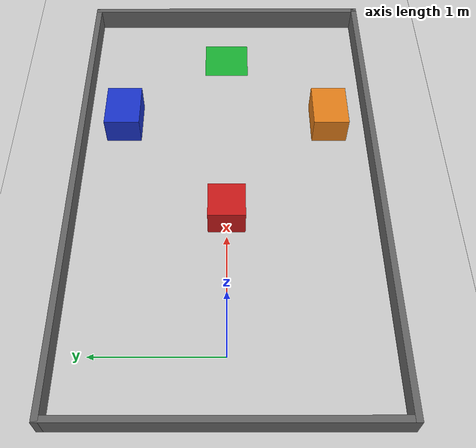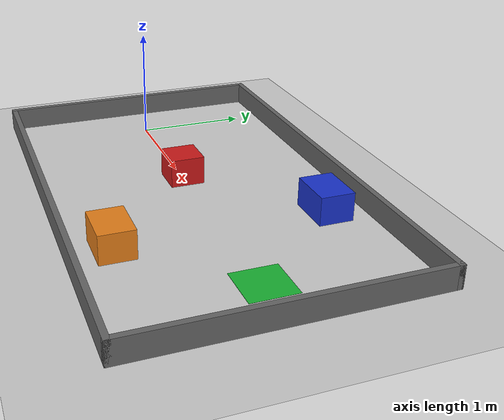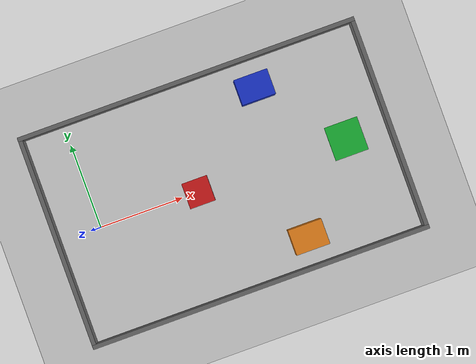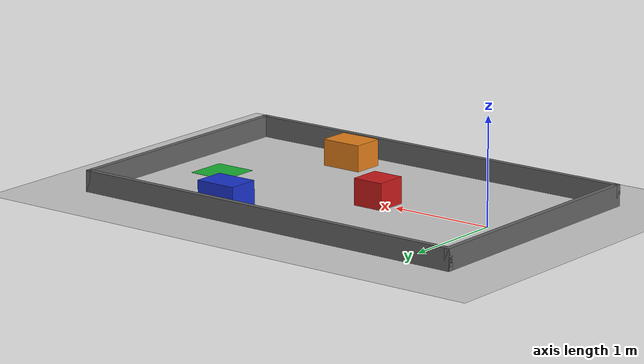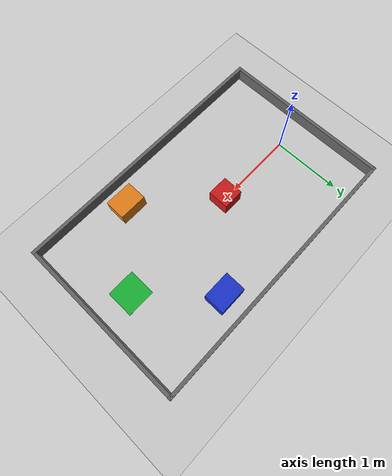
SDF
<?xml version="1.0" ?>
<sdf version="1.8">
  <world name="obstacle_course">

    <physics name="2ms" type="ignored">
      <max_step_size>0.002</max_step_size>
      <real_time_factor>1.0</real_time_factor>
    </physics>

    <!-- Systems the world needs: physics, commands, scene updates, and sensors -->
    <plugin filename="ignition-gazebo-physics-system"
            name="ignition::gazebo::systems::Physics"/>
    <plugin filename="ignition-gazebo-user-commands-system"
            name="ignition::gazebo::systems::UserCommands"/>
    <plugin filename="ignition-gazebo-scene-broadcaster-system"
            name="ignition::gazebo::systems::SceneBroadcaster"/>
    <plugin filename="ignition-gazebo-sensors-system"
            name="ignition::gazebo::systems::Sensors">
      <render_engine>ogre2</render_engine>
    </plugin>
    <plugin filename="ignition-gazebo-imu-system"
            name="ignition::gazebo::systems::Imu"/>

    <scene>
      <ambient>0.6 0.6 0.6 1</ambient>
      <background>0.75 0.85 0.95 1</background>
    </scene>

    <light type="directional" name="sun">
      <cast_shadows>false</cast_shadows>
      <pose>0 0 10 0 0 0</pose>
      <diffuse>0.9 0.9 0.9 1</diffuse>
      <specular>0.2 0.2 0.2 1</specular>
      <direction>-0.5 0.1 -0.9</direction>
    </light>

    <model name="ground_plane">
      <static>true</static>
      <link name="link">
        <collision name="collision">
          <geometry><plane><normal>0 0 1</normal><size>20 20</size></plane></geometry>
        </collision>
        <visual name="visual">
          <geometry><plane><normal>0 0 1</normal><size>20 20</size></plane></geometry>
          <material>
            <ambient>0.8 0.8 0.8 1</ambient>
            <diffuse>0.8 0.8 0.8 1</diffuse>
          </material>
        </visual>
      </link>
    </model>

    <!-- ===== Arena walls: x from -0.5 to 3.5 m, y from -1.25 to 1.25 m ===== -->
    <model name="wall_north">
      <static>true</static>
      <pose>1.5 1.25 0.1 0 0 0</pose>
      <link name="link">
        <collision name="collision"><geometry><box><size>4.05 0.05 0.2</size></box></geometry></collision>
        <visual name="visual">
          <geometry><box><size>4.05 0.05 0.2</size></box></geometry>
          <material><ambient>0.4 0.4 0.4 1</ambient><diffuse>0.4 0.4 0.4 1</diffuse></material>
        </visual>
      </link>
    </model>
    <model name="wall_south">
      <static>true</static>
      <pose>1.5 -1.25 0.1 0 0 0</pose>
      <link name="link">
        <collision name="collision"><geometry><box><size>4.05 0.05 0.2</size></box></geometry></collision>
        <visual name="visual">
          <geometry><box><size>4.05 0.05 0.2</size></box></geometry>
          <material><ambient>0.4 0.4 0.4 1</ambient><diffuse>0.4 0.4 0.4 1</diffuse></material>
        </visual>
      </link>
    </model>
    <model name="wall_east">
      <static>true</static>
      <pose>3.5 0 0.1 0 0 0</pose>
      <link name="link">
        <collision name="collision"><geometry><box><size>0.05 2.55 0.2</size></box></geometry></collision>
        <visual name="visual">
          <geometry><box><size>0.05 2.55 0.2</size></box></geometry>
          <material><ambient>0.4 0.4 0.4 1</ambient><diffuse>0.4 0.4 0.4 1</diffuse></material>
        </visual>
      </link>
    </model>
    <model name="wall_west">
      <static>true</static>
      <pose>-0.5 0 0.1 0 0 0</pose>
      <link name="link">
        <collision name="collision"><geometry><box><size>0.05 2.55 0.2</size></box></geometry></collision>
        <visual name="visual">
          <geometry><box><size>0.05 2.55 0.2</size></box></geometry>
          <material><ambient>0.4 0.4 0.4 1</ambient><diffuse>0.4 0.4 0.4 1</diffuse></material>
        </visual>
      </link>
    </model>

    <!-- ===== Obstacles ===== -->
    <model name="obstacle_red_box">
      <static>true</static>
      <pose>1.2 0 0.125 0 0 0</pose>
      <link name="link">
        <collision name="collision"><geometry><box><size>0.3 0.3 0.25</size></box></geometry></collision>
        <visual name="visual">
          <geometry><box><size>0.3 0.3 0.25</size></box></geometry>
          <material><ambient>0.8 0.1 0.1 1</ambient><diffuse>0.8 0.1 0.1 1</diffuse></material>
        </visual>
      </link>
    </model>
    <model name="obstacle_blue_box">
      <static>true</static>
      <pose>2.2 0.9 0.125 0 0 0</pose>
      <link name="link">
        <collision name="collision"><geometry><box><size>0.4 0.3 0.25</size></box></geometry></collision>
        <visual name="visual">
          <geometry><box><size>0.4 0.3 0.25</size></box></geometry>
          <material><ambient>0.1 0.2 0.8 1</ambient><diffuse>0.1 0.2 0.8 1</diffuse></material>
        </visual>
      </link>
    </model>
    <model name="obstacle_orange_box">
      <static>true</static>
      <pose>2.2 -0.9 0.125 0 0 0</pose>
      <link name="link">
        <collision name="collision"><geometry><box><size>0.4 0.3 0.25</size></box></geometry></collision>
        <visual name="visual">
          <geometry><box><size>0.4 0.3 0.25</size></box></geometry>
          <material><ambient>0.9 0.5 0.1 1</ambient><diffuse>0.9 0.5 0.1 1</diffuse></material>
        </visual>
      </link>
    </model>

    <!-- ===== Goal pad (flat marker the robot can drive onto) ===== -->
    <model name="goal_pad">
      <static>true</static>
      <pose>3.0 0 0.001 0 0 0</pose>
      <link name="link">
        <visual name="visual">
          <geometry><box><size>0.4 0.4 0.002</size></box></geometry>
          <material><ambient>0.1 0.7 0.2 1</ambient><diffuse>0.1 0.7 0.2 1</diffuse></material>
        </visual>
      </link>
    </model>

  </world>
</sdf>
